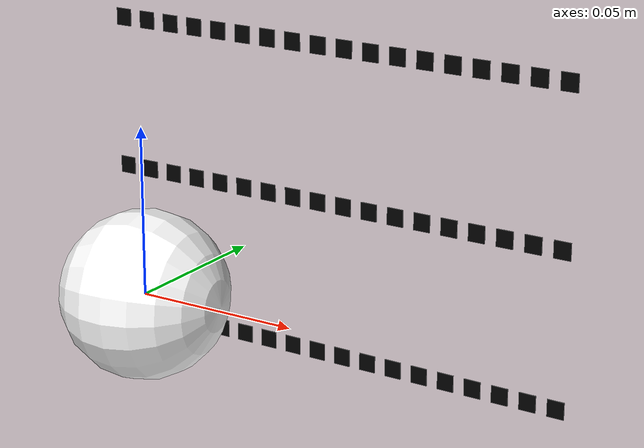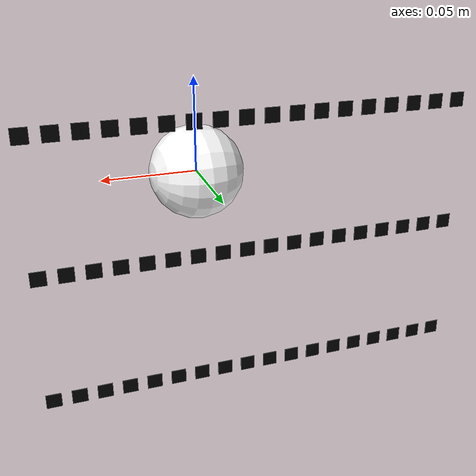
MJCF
<?xml version="1.0"?>
<mujoco>
    <compiler angle="radian"/>
    <option collision="all" timestep="0.002"/>
    <size njmax="1000" nconmax="400"/>
    <default class="main">
        <default class="eye">
            <position ctrllimited="true" kp="5"/>
            <joint type="hinge" stiffness="0.0" damping="0.5" armature="0.0" limited="true"/>
        </default>
        <default class="smart-glass-grid">
            <geom type="box" size="0.0030 0.0001 0.0030" rgba="0 0 0 1"/>
        </default>
        <default class="background-grid">
            <geom type="box" size="0.01 0.0001 0.01" rgba="0.5 0.5 0.5 0"/>
        </default>
    </default>
    <asset>
        <texture type="skybox" builtin="gradient" rgb1="1 1 1" rgb2="0.6 0.8 1" width="256" height="256"/>
        <texture type="cube" name="blue-eye" file="assets/blue_eye_texture_circle.png" gridsize="3 4" gridlayout=".U..LFRB.D.."/>
        <material name="blue-eye" texture="blue-eye" texuniform="true"/>
        <mesh name="eye" file="assets/basic_eye_2.stl" scale="0.05 0.05 0.05"/>
    </asset>
    <worldbody>
        <light name="scene_directional_light" directional="true" castshadow="false" cutoff="4" exponent="20"
               diffuse="1 1 1" specular="0 0 0" pos=".9 .3 2.5"/>

        <camera name="env" pos="-0.1 -0.05 0.05" euler="1.0 -0.85 -0.37"/>

        <body name="eye" pos="0 0 0" quat="0.7071068 0.7071068 0 0">
            <geom name="eye" type="sphere" size="0.025" material="blue-eye" rgba="1 1 1 1" quat="0.6625191 0.0130711 0.7488417 0.0115643"/>
            <camera name="eye" fovy="90"/>
            <joint name="eye-joint-x" class="eye" axis="1 0 0" range="-1.6 1.6"/>
            <joint name="eye-joint-y" class="eye" axis="0 1 0" range="-1.6 1.6"/>
            <site name="rangefinder-site" quat="0 0 1 0"/>
        </body>

        <body name="smart-glass-pane" pos="0 0.10 0">
            <geom name="grid-0" pos="-0.085 0 0.0536" class="smart-glass-grid"/>
            <geom name="grid-1" pos="-0.075 0 0.0536" class="smart-glass-grid"/>
            <geom name="grid-2" pos="-0.065 0 0.0536" class="smart-glass-grid"/>
            <geom name="grid-3" pos="-0.055 0 0.0536" class="smart-glass-grid"/>
            <geom name="grid-4" pos="-0.045 0 0.0536" class="smart-glass-grid"/>
            <geom name="grid-5" pos="-0.035 0 0.0536" class="smart-glass-grid"/>

            <geom name="grid-6" pos="-0.025 0 0.0536" class="smart-glass-grid"/>
            <geom name="grid-7" pos="-0.015 0 0.0536" class="smart-glass-grid"/>
            <geom name="grid-8" pos="-0.005 0 0.0536" class="smart-glass-grid"/>
            <geom name="grid-9" pos="0.005 0 0.0536" class="smart-glass-grid"/>
            <geom name="grid-10" pos="0.015 0 0.0536" class="smart-glass-grid"/>
            <geom name="grid-11" pos="0.025 0 0.0536" class="smart-glass-grid"/>

            <geom name="grid-12" pos="0.035 0 0.0536" class="smart-glass-grid"/>
            <geom name="grid-13" pos="0.045 0 0.0536" class="smart-glass-grid"/>
            <geom name="grid-14" pos="0.055 0 0.0536" class="smart-glass-grid"/>
            <geom name="grid-15" pos="0.065 0 0.0536" class="smart-glass-grid"/>
            <geom name="grid-16" pos="0.075 0 0.0536" class="smart-glass-grid"/>
            <geom name="grid-17" pos="0.085 0 0.0536" class="smart-glass-grid"/>

            <geom name="grid-18" pos="-0.085 0 0" class="smart-glass-grid"/>
            <geom name="grid-19" pos="-0.075 0 0" class="smart-glass-grid"/>
            <geom name="grid-20" pos="-0.065 0 0" class="smart-glass-grid"/>
            <geom name="grid-21" pos="-0.055 0 0" class="smart-glass-grid"/>
            <geom name="grid-22" pos="-0.045 0 0" class="smart-glass-grid"/>
            <geom name="grid-23" pos="-0.035 0 0" class="smart-glass-grid"/>

            <geom name="grid-24" pos="-0.025 0 0" class="smart-glass-grid"/>
            <geom name="grid-25" pos="-0.015 0 0" class="smart-glass-grid"/>
            <geom name="grid-26" pos="-0.005 0 0" class="smart-glass-grid"/>
            <geom name="grid-27" pos="0.005 0 0" class="smart-glass-grid"/>
            <geom name="grid-28" pos="0.015 0 0" class="smart-glass-grid"/>
            <geom name="grid-29" pos="0.025 0 0" class="smart-glass-grid"/>

            <geom name="grid-30" pos="0.035 0 0" class="smart-glass-grid"/>
            <geom name="grid-31" pos="0.045 0 0" class="smart-glass-grid"/>
            <geom name="grid-32" pos="0.055 0 0" class="smart-glass-grid"/>
            <geom name="grid-33" pos="0.065 0 0" class="smart-glass-grid"/>
            <geom name="grid-34" pos="0.075 0 0" class="smart-glass-grid"/>
            <geom name="grid-35" pos="0.085 0 0" class="smart-glass-grid"/>

            <geom name="grid-36" pos="-0.085 0 -0.0536" class="smart-glass-grid"/>
            <geom name="grid-37" pos="-0.075 0 -0.0536" class="smart-glass-grid"/>
            <geom name="grid-38" pos="-0.065 0 -0.0536" class="smart-glass-grid"/>
            <geom name="grid-39" pos="-0.055 0 -0.0536" class="smart-glass-grid"/>
            <geom name="grid-40" pos="-0.045 0 -0.0536" class="smart-glass-grid"/>
            <geom name="grid-41" pos="-0.035 0 -0.0536" class="smart-glass-grid"/>

            <geom name="grid-42" pos="-0.025 0 -0.0536" class="smart-glass-grid"/>
            <geom name="grid-43" pos="-0.015 0 -0.0536" class="smart-glass-grid"/>
            <geom name="grid-44" pos="-0.005 0 -0.0536" class="smart-glass-grid"/>
            <geom name="grid-45" pos="0.005 0 -0.0536" class="smart-glass-grid"/>
            <geom name="grid-46" pos="0.015 0 -0.0536" class="smart-glass-grid"/>
            <geom name="grid-47" pos="0.025 0 -0.0536" class="smart-glass-grid"/>

            <geom name="grid-48" pos="0.035 0 -0.0536" class="smart-glass-grid"/>
            <geom name="grid-49" pos="0.045 0 -0.0536" class="smart-glass-grid"/>
            <geom name="grid-50" pos="0.055 0 -0.0536" class="smart-glass-grid"/>
            <geom name="grid-51" pos="0.065 0 -0.0536" class="smart-glass-grid"/>
            <geom name="grid-52" pos="0.075 0 -0.0536" class="smart-glass-grid"/>
            <geom name="grid-53" pos="0.085 0 -0.0536" class="smart-glass-grid"/>
        </body>

        <body name="background-pane" pos="0 0.15 0.01">
            <geom name="grid-bgp" pos="-0 0 0" class="background-grid"/>
        </body>
    </worldbody>
    <actuator>
        <position name="eye-x-motor" joint="eye-joint-x" class="eye" ctrlrange="-1.6 1.6"/>
        <position name="eye-y-motor" joint="eye-joint-y" class="eye" ctrlrange="-1.6 1.6"/>
    </actuator>
    <sensor>
        <rangefinder name="rangefinder" site="rangefinder-site"/>
    </sensor>
</mujoco>
